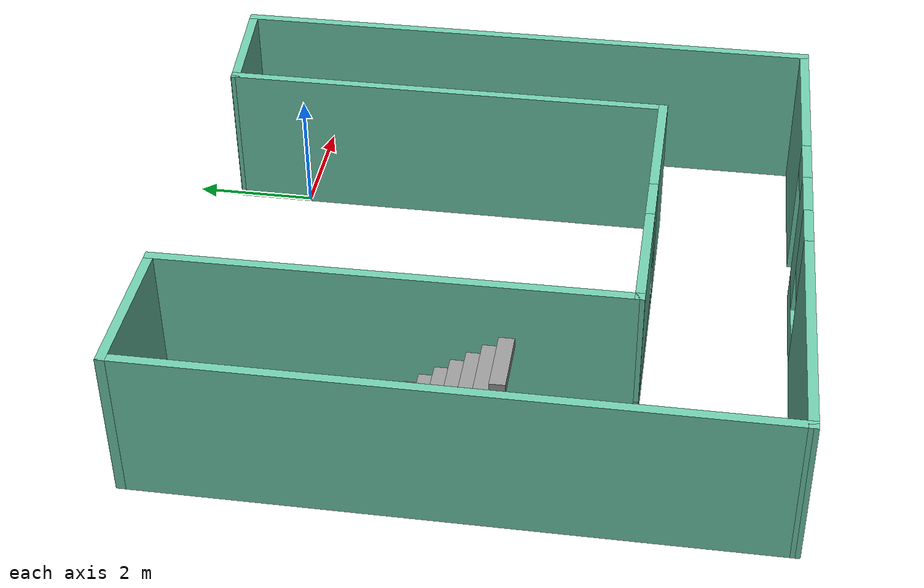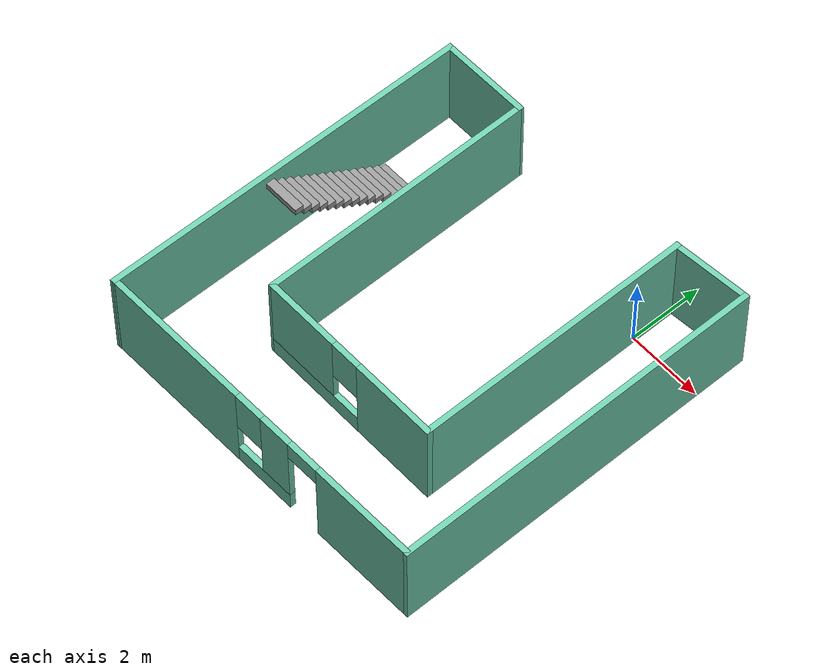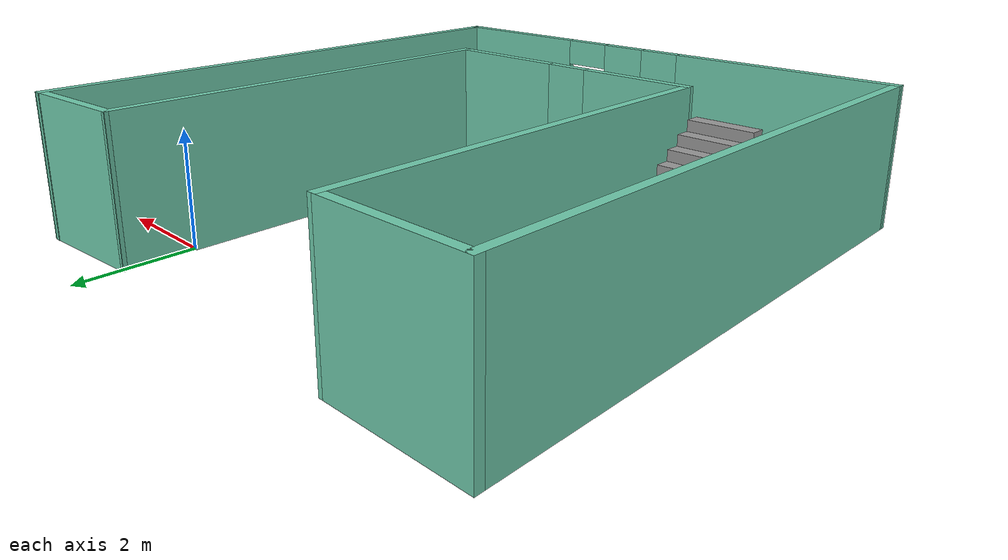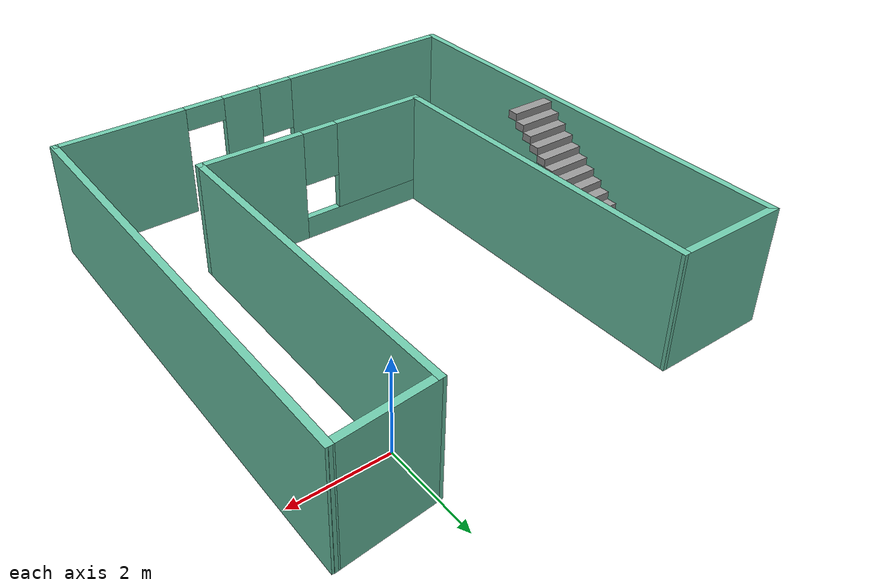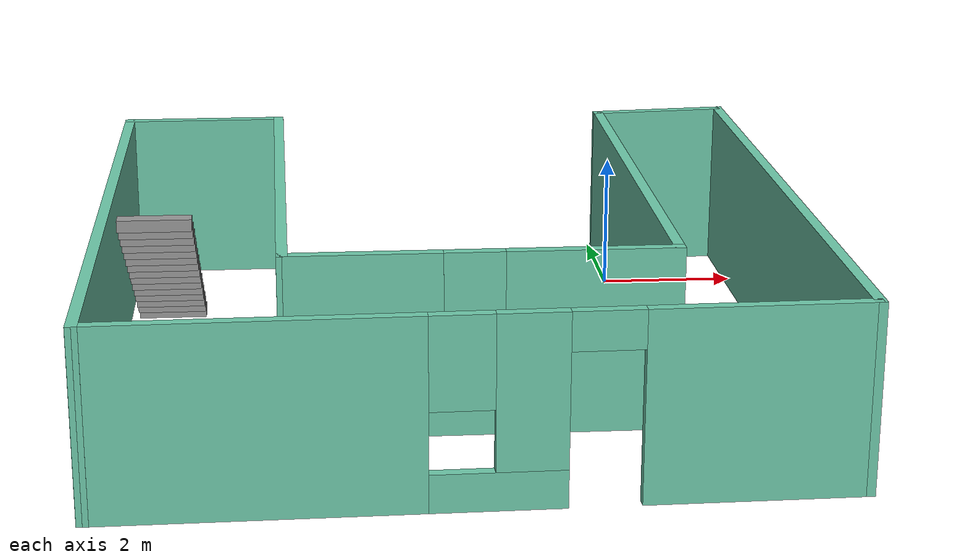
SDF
<?xml version='1.0'?>
<sdf version='1.6'>
  <model name='building'>
    <pose frame=''>-2.75398 -3.67501 0 0 -0 0</pose>
    <link name='Stairs_1'>
      <visual name='Stairs_1_Visual_0'>
        <pose frame=''>-4.04114 2.5527 0.083333 0 -0 0</pose>
        <geometry>
          <box>
            <size>1 0.233333 0.166667</size>
          </box>
        </geometry>
        <material>
          <script>
            <uri>file://media/materials/scripts/gazebo.material</uri>
            <name>Gazebo/Grey</name>
          </script>
          <ambient>1 1 1 1</ambient>
        </material>
        <meta>
          <layer>0</layer>
        </meta>
      </visual>
      <collision name='Stairs_1_Collision_0'>
        <geometry>
          <box>
            <size>1 0.233333 0.166667</size>
          </box>
        </geometry>
        <pose frame=''>-4.04114 2.5527 0.083333 0 -0 0</pose>
      </collision>
      <visual name='Stairs_1_Visual_1'>
        <pose frame=''>-4.04114 2.31936 0.25 0 -0 0</pose>
        <geometry>
          <box>
            <size>1 0.233333 0.166667</size>
          </box>
        </geometry>
        <material>
          <script>
            <uri>file://media/materials/scripts/gazebo.material</uri>
            <name>Gazebo/Grey</name>
          </script>
          <ambient>1 1 1 1</ambient>
        </material>
        <meta>
          <layer>0</layer>
        </meta>
      </visual>
      <collision name='Stairs_1_Collision_1'>
        <geometry>
          <box>
            <size>1 0.233333 0.166667</size>
          </box>
        </geometry>
        <pose frame=''>-4.04114 2.31936 0.25 0 -0 0</pose>
      </collision>
      <visual name='Stairs_1_Visual_2'>
        <pose frame=''>-4.04114 2.08603 0.416667 0 -0 0</pose>
        <geometry>
          <box>
            <size>1 0.233333 0.166667</size>
          </box>
        </geometry>
        <material>
          <script>
            <uri>file://media/materials/scripts/gazebo.material</uri>
            <name>Gazebo/Grey</name>
          </script>
          <ambient>1 1 1 1</ambient>
        </material>
        <meta>
          <layer>0</layer>
        </meta>
      </visual>
      <collision name='Stairs_1_Collision_2'>
        <geometry>
          <box>
            <size>1 0.233333 0.166667</size>
          </box>
        </geometry>
        <pose frame=''>-4.04114 2.08603 0.416667 0 -0 0</pose>
      </collision>
      <visual name='Stairs_1_Visual_3'>
        <pose frame=''>-4.04114 1.8527 0.583333 0 -0 0</pose>
        <geometry>
          <box>
            <size>1 0.233333 0.166667</size>
          </box>
        </geometry>
        <material>
          <script>
            <uri>file://media/materials/scripts/gazebo.material</uri>
            <name>Gazebo/Grey</name>
          </script>
          <ambient>1 1 1 1</ambient>
        </material>
        <meta>
          <layer>0</layer>
        </meta>
      </visual>
      <collision name='Stairs_1_Collision_3'>
        <geometry>
          <box>
            <size>1 0.233333 0.166667</size>
          </box>
        </geometry>
        <pose frame=''>-4.04114 1.8527 0.583333 0 -0 0</pose>
      </collision>
      <visual name='Stairs_1_Visual_4'>
        <pose frame=''>-4.04114 1.61936 0.75 0 -0 0</pose>
        <geometry>
          <box>
            <size>1 0.233333 0.166667</size>
          </box>
        </geometry>
        <material>
          <script>
            <uri>file://media/materials/scripts/gazebo.material</uri>
            <name>Gazebo/Grey</name>
          </script>
          <ambient>1 1 1 1</ambient>
        </material>
        <meta>
          <layer>0</layer>
        </meta>
      </visual>
      <collision name='Stairs_1_Collision_4'>
        <geometry>
          <box>
            <size>1 0.233333 0.166667</size>
          </box>
        </geometry>
        <pose frame=''>-4.04114 1.61936 0.75 0 -0 0</pose>
      </collision>
      <visual name='Stairs_1_Visual_5'>
        <pose frame=''>-4.04114 1.38603 0.916667 0 -0 0</pose>
        <geometry>
          <box>
            <size>1 0.233333 0.166667</size>
          </box>
        </geometry>
        <material>
          <script>
            <uri>file://media/materials/scripts/gazebo.material</uri>
            <name>Gazebo/Grey</name>
          </script>
          <ambient>1 1 1 1</ambient>
        </material>
        <meta>
          <layer>0</layer>
        </meta>
      </visual>
      <collision name='Stairs_1_Collision_5'>
        <geometry>
          <box>
            <size>1 0.233333 0.166667</size>
          </box>
        </geometry>
        <pose frame=''>-4.04114 1.38603 0.916667 0 -0 0</pose>
      </collision>
      <visual name='Stairs_1_Visual_6'>
        <pose frame=''>-4.04114 1.1527 1.08333 0 -0 0</pose>
        <geometry>
          <box>
            <size>1 0.233333 0.166667</size>
          </box>
        </geometry>
        <material>
          <script>
            <uri>file://media/materials/scripts/gazebo.material</uri>
            <name>Gazebo/Grey</name>
          </script>
          <ambient>1 1 1 1</ambient>
        </material>
        <meta>
          <layer>0</layer>
        </meta>
      </visual>
      <collision name='Stairs_1_Collision_6'>
        <geometry>
          <box>
            <size>1 0.233333 0.166667</size>
          </box>
        </geometry>
        <pose frame=''>-4.04114 1.1527 1.08333 0 -0 0</pose>
      </collision>
      <visual name='Stairs_1_Visual_7'>
        <pose frame=''>-4.04114 0.919364 1.25 0 -0 0</pose>
        <geometry>
          <box>
            <size>1 0.233333 0.166667</size>
          </box>
        </geometry>
        <material>
          <script>
            <uri>file://media/materials/scripts/gazebo.material</uri>
            <name>Gazebo/Grey</name>
          </script>
          <ambient>1 1 1 1</ambient>
        </material>
        <meta>
          <layer>0</layer>
        </meta>
      </visual>
      <collision name='Stairs_1_Collision_7'>
        <geometry>
          <box>
            <size>1 0.233333 0.166667</size>
          </box>
        </geometry>
        <pose frame=''>-4.04114 0.919364 1.25 0 -0 0</pose>
      </collision>
      <visual name='Stairs_1_Visual_8'>
        <pose frame=''>-4.04114 0.686031 1.41667 0 -0 0</pose>
        <geometry>
          <box>
            <size>1 0.233333 0.166667</size>
          </box>
        </geometry>
        <material>
          <script>
            <uri>file://media/materials/scripts/gazebo.material</uri>
            <name>Gazebo/Grey</name>
          </script>
          <ambient>1 1 1 1</ambient>
        </material>
        <meta>
          <layer>0</layer>
        </meta>
      </visual>
      <collision name='Stairs_1_Collision_8'>
        <geometry>
          <box>
            <size>1 0.233333 0.166667</size>
          </box>
        </geometry>
        <pose frame=''>-4.04114 0.686031 1.41667 0 -0 0</pose>
      </collision>
      <visual name='Stairs_1_Visual_9'>
        <pose frame=''>-4.04114 0.452697 1.58333 0 -0 0</pose>
        <geometry>
          <box>
            <size>1 0.233333 0.166667</size>
          </box>
        </geometry>
        <material>
          <script>
            <uri>file://media/materials/scripts/gazebo.material</uri>
            <name>Gazebo/Grey</name>
          </script>
          <ambient>1 1 1 1</ambient>
        </material>
        <meta>
          <layer>0</layer>
        </meta>
      </visual>
      <collision name='Stairs_1_Collision_9'>
        <geometry>
          <box>
            <size>1 0.233333 0.166667</size>
          </box>
        </geometry>
        <pose frame=''>-4.04114 0.452697 1.58333 0 -0 0</pose>
      </collision>
      <visual name='Stairs_1_Visual_10'>
        <pose frame=''>-4.04114 0.219364 1.75 0 -0 0</pose>
        <geometry>
          <box>
            <size>1 0.233333 0.166667</size>
          </box>
        </geometry>
        <material>
          <script>
            <uri>file://media/materials/scripts/gazebo.material</uri>
            <name>Gazebo/Grey</name>
          </script>
          <ambient>1 1 1 1</ambient>
        </material>
        <meta>
          <layer>0</layer>
        </meta>
      </visual>
      <collision name='Stairs_1_Collision_10'>
        <geometry>
          <box>
            <size>1 0.233333 0.166667</size>
          </box>
        </geometry>
        <pose frame=''>-4.04114 0.219364 1.75 0 -0 0</pose>
      </collision>
      <visual name='Stairs_1_Visual_11'>
        <pose frame=''>-4.04114 -0.01397 1.91667 0 -0 0</pose>
        <geometry>
          <box>
            <size>1 0.233333 0.166667</size>
          </box>
        </geometry>
        <material>
          <script>
            <uri>file://media/materials/scripts/gazebo.material</uri>
            <name>Gazebo/Grey</name>
          </script>
          <ambient>1 1 1 1</ambient>
        </material>
        <meta>
          <layer>0</layer>
        </meta>
      </visual>
      <collision name='Stairs_1_Collision_11'>
        <geometry>
          <box>
            <size>1 0.233333 0.166667</size>
          </box>
        </geometry>
        <pose frame=''>-4.04114 -0.01397 1.91667 0 -0 0</pose>
      </collision>
      <visual name='Stairs_1_Visual_12'>
        <pose frame=''>-4.04114 -0.247303 2.08333 0 -0 0</pose>
        <geometry>
          <box>
            <size>1 0.233333 0.166667</size>
          </box>
        </geometry>
        <material>
          <script>
            <uri>file://media/materials/scripts/gazebo.material</uri>
            <name>Gazebo/Grey</name>
          </script>
          <ambient>1 1 1 1</ambient>
        </material>
        <meta>
          <layer>0</layer>
        </meta>
      </visual>
      <collision name='Stairs_1_Collision_12'>
        <geometry>
          <box>
            <size>1 0.233333 0.166667</size>
          </box>
        </geometry>
        <pose frame=''>-4.04114 -0.247303 2.08333 0 -0 0</pose>
      </collision>
      <visual name='Stairs_1_Visual_13'>
        <pose frame=''>-4.04114 -0.480636 2.25 0 -0 0</pose>
        <geometry>
          <box>
            <size>1 0.233333 0.166667</size>
          </box>
        </geometry>
        <material>
          <script>
            <uri>file://media/materials/scripts/gazebo.material</uri>
            <name>Gazebo/Grey</name>
          </script>
          <ambient>1 1 1 1</ambient>
        </material>
        <meta>
          <layer>0</layer>
        </meta>
      </visual>
      <collision name='Stairs_1_Collision_13'>
        <geometry>
          <box>
            <size>1 0.233333 0.166667</size>
          </box>
        </geometry>
        <pose frame=''>-4.04114 -0.480636 2.25 0 -0 0</pose>
      </collision>
      <visual name='Stairs_1_Visual_14'>
        <pose frame=''>-4.04114 -0.713969 2.41667 0 -0 0</pose>
        <geometry>
          <box>
            <size>1 0.233333 0.166667</size>
          </box>
        </geometry>
        <material>
          <script>
            <uri>file://media/materials/scripts/gazebo.material</uri>
            <name>Gazebo/Grey</name>
          </script>
          <ambient>1 1 1 1</ambient>
        </material>
        <meta>
          <layer>0</layer>
        </meta>
      </visual>
      <collision name='Stairs_1_Collision_14'>
        <geometry>
          <box>
            <size>1 0.233333 0.166667</size>
          </box>
        </geometry>
        <pose frame=''>-4.04114 -0.713969 2.41667 0 -0 0</pose>
      </collision>
    </link>
    <link name='Wall_10'>
      <collision name='Wall_10_Collision'>
        <geometry>
          <box>
            <size>7.50017 0.15 2.5</size>
          </box>
        </geometry>
        <pose frame=''>0 0 1.25 0 -0 0</pose>
      </collision>
      <visual name='Wall_10_Visual'>
        <pose frame=''>0 0 1.25 0 -0 0</pose>
        <geometry>
          <box>
            <size>7.50017 0.15 2.5</size>
          </box>
        </geometry>
        <material>
          <script>
            <uri>file://media/materials/scripts/gazebo.material</uri>
            <name>Gazebo/Grey</name>
          </script>
          <ambient>0.435294 0.796078 0.67451 1</ambient>
        </material>
        <meta>
          <layer>0</layer>
        </meta>
      </visual>
      <pose frame=''>-2.3641 1.16528 0 0 -0 1.5776</pose>
    </link>
    <link name='Wall_11'>
      <collision name='Wall_11_Collision'>
        <geometry>
          <box>
            <size>2.5 0.15 2.5</size>
          </box>
        </geometry>
        <pose frame=''>0 0 1.25 0 -0 0</pose>
      </collision>
      <visual name='Wall_11_Visual'>
        <pose frame=''>0 0 1.25 0 -0 0</pose>
        <geometry>
          <box>
            <size>2.5 0.15 2.5</size>
          </box>
        </geometry>
        <material>
          <script>
            <uri>file://media/materials/scripts/gazebo.material</uri>
            <name>Gazebo/Grey</name>
          </script>
          <ambient>0.435294 0.796078 0.67451 1</ambient>
        </material>
        <meta>
          <layer>0</layer>
        </meta>
      </visual>
      <pose frame=''>-3.5641 4.84028 0 0 -0 3.14159</pose>
    </link>
    <link name='Wall_4'>
      <collision name='Wall_4_Collision'>
        <geometry>
          <box>
            <size>10 0.15 2.5</size>
          </box>
        </geometry>
        <pose frame=''>0 0 1.25 0 -0 0</pose>
      </collision>
      <visual name='Wall_4_Visual'>
        <pose frame=''>0 0 1.25 0 -0 0</pose>
        <geometry>
          <box>
            <size>10 0.15 2.5</size>
          </box>
        </geometry>
        <material>
          <script>
            <uri>file://media/materials/scripts/gazebo.material</uri>
            <name>Gazebo/Grey</name>
          </script>
          <ambient>0.435294 0.796078 0.67451 1</ambient>
        </material>
        <meta>
          <layer>0</layer>
        </meta>
      </visual>
      <pose frame=''>-4.7391 -0.084724 0 0 0 -1.5708</pose>
    </link>
    <link name='Wall_5'>
      <pose frame=''>-0.019935 -4.92739 0 0 -0 0.017445</pose>
      <visual name='Wall_5_Visual_0'>
        <pose frame=''>-2.70953 0 1.25 0 -0 0</pose>
        <geometry>
          <box>
            <size>4.17071 0.15 2.5</size>
          </box>
        </geometry>
        <material>
          <script>
            <uri>file://media/materials/scripts/gazebo.material</uri>
            <name>Gazebo/Grey</name>
          </script>
          <ambient>0.435294 0.796078 0.67451 1</ambient>
        </material>
        <meta>
          <layer>0</layer>
        </meta>
      </visual>
      <collision name='Wall_5_Collision_0'>
        <geometry>
          <box>
            <size>4.17071 0.15 2.5</size>
          </box>
        </geometry>
        <pose frame=''>-2.70953 0 1.25 0 -0 0</pose>
      </collision>
      <visual name='Wall_5_Visual_1'>
        <pose frame=''>3.3783 0 1.25 0 -0 0</pose>
        <geometry>
          <box>
            <size>2.83318 0.15 2.5</size>
          </box>
        </geometry>
        <material>
          <script>
            <uri>file://media/materials/scripts/gazebo.material</uri>
            <name>Gazebo/Grey</name>
          </script>
          <ambient>0.435294 0.796078 0.67451 1</ambient>
        </material>
        <meta>
          <layer>0</layer>
        </meta>
      </visual>
      <collision name='Wall_5_Collision_1'>
        <geometry>
          <box>
            <size>2.83318 0.15 2.5</size>
          </box>
        </geometry>
        <pose frame=''>3.3783 0 1.25 0 -0 0</pose>
      </collision>
      <visual name='Wall_5_Visual_2'>
        <pose frame=''>0.218766 0 0.25 0 -0 0</pose>
        <geometry>
          <box>
            <size>1.68588 0.15 0.5</size>
          </box>
        </geometry>
        <material>
          <script>
            <uri>file://media/materials/scripts/gazebo.material</uri>
            <name>Gazebo/Grey</name>
          </script>
          <ambient>0.435294 0.796078 0.67451 1</ambient>
        </material>
        <meta>
          <layer>0</layer>
        </meta>
      </visual>
      <collision name='Wall_5_Collision_2'>
        <geometry>
          <box>
            <size>1.68588 0.15 0.5</size>
          </box>
        </geometry>
        <pose frame=''>0.218766 0 0.25 0 -0 0</pose>
      </collision>
      <visual name='Wall_5_Visual_3'>
        <pose frame=''>0.618766 0 1.5 0 -0 0</pose>
        <geometry>
          <box>
            <size>0.885878 0.15 2</size>
          </box>
        </geometry>
        <material>
          <script>
            <uri>file://media/materials/scripts/gazebo.material</uri>
            <name>Gazebo/Grey</name>
          </script>
          <ambient>0.435294 0.796078 0.67451 1</ambient>
        </material>
        <meta>
          <layer>0</layer>
        </meta>
      </visual>
      <collision name='Wall_5_Collision_3'>
        <geometry>
          <box>
            <size>0.885878 0.15 2</size>
          </box>
        </geometry>
        <pose frame=''>0.618766 0 1.5 0 -0 0</pose>
      </collision>
      <visual name='Wall_5_Visual_4'>
        <pose frame=''>-0.224173 0 1.9 0 -0 0</pose>
        <geometry>
          <box>
            <size>0.8 0.15 1.2</size>
          </box>
        </geometry>
        <material>
          <script>
            <uri>file://media/materials/scripts/gazebo.material</uri>
            <name>Gazebo/Grey</name>
          </script>
          <ambient>0.435294 0.796078 0.67451 1</ambient>
        </material>
        <meta>
          <layer>0</layer>
        </meta>
      </visual>
      <collision name='Wall_5_Collision_4'>
        <geometry>
          <box>
            <size>0.8 0.15 1.2</size>
          </box>
        </geometry>
        <pose frame=''>-0.224173 0 1.9 0 -0 0</pose>
      </collision>
      <visual name='Wall_5_Visual_5'>
        <pose frame=''>1.51171 0 2.25 0 -0 0</pose>
        <geometry>
          <box>
            <size>0.9 0.15 0.5</size>
          </box>
        </geometry>
        <material>
          <script>
            <uri>file://media/materials/scripts/gazebo.material</uri>
            <name>Gazebo/Grey</name>
          </script>
          <ambient>0.435294 0.796078 0.67451 1</ambient>
        </material>
        <meta>
          <layer>0</layer>
        </meta>
      </visual>
      <collision name='Wall_5_Collision_5'>
        <geometry>
          <box>
            <size>0.9 0.15 0.5</size>
          </box>
        </geometry>
        <pose frame=''>1.51171 0 2.25 0 -0 0</pose>
      </collision>
    </link>
    <link name='Wall_6'>
      <collision name='Wall_6_Collision'>
        <geometry>
          <box>
            <size>10 0.15 2.5</size>
          </box>
        </geometry>
        <pose frame=''>0 0 1.25 0 -0 0</pose>
      </collision>
      <visual name='Wall_6_Visual'>
        <pose frame=''>0 0 1.25 0 -0 0</pose>
        <geometry>
          <box>
            <size>10 0.15 2.5</size>
          </box>
        </geometry>
        <material>
          <script>
            <uri>file://media/materials/scripts/gazebo.material</uri>
            <name>Gazebo/Grey</name>
          </script>
          <ambient>0.435294 0.796078 0.67451 1</ambient>
        </material>
        <meta>
          <layer>0</layer>
        </meta>
      </visual>
      <pose frame=''>4.7404 0.079941 0 0 -0 1.5708</pose>
    </link>
    <link name='Wall_7'>
      <collision name='Wall_7_Collision'>
        <geometry>
          <box>
            <size>2.09532 0.15 2.5</size>
          </box>
        </geometry>
        <pose frame=''>0 0 1.25 0 -0 0</pose>
      </collision>
      <visual name='Wall_7_Visual'>
        <pose frame=''>0 0 1.25 0 -0 0</pose>
        <geometry>
          <box>
            <size>2.09532 0.15 2.5</size>
          </box>
        </geometry>
        <material>
          <script>
            <uri>file://media/materials/scripts/gazebo.material</uri>
            <name>Gazebo/Grey</name>
          </script>
          <ambient>0.435294 0.796078 0.67451 1</ambient>
        </material>
        <meta>
          <layer>0</layer>
        </meta>
      </visual>
      <pose frame=''>3.73007 4.92261 0 0 0 -3.05685</pose>
    </link>
    <link name='Wall_8'>
      <collision name='Wall_8_Collision'>
        <geometry>
          <box>
            <size>7.5 0.15 2.5</size>
          </box>
        </geometry>
        <pose frame=''>0 0 1.25 0 -0 0</pose>
      </collision>
      <visual name='Wall_8_Visual'>
        <pose frame=''>0 0 1.25 0 -0 0</pose>
        <geometry>
          <box>
            <size>7.5 0.15 2.5</size>
          </box>
        </geometry>
        <material>
          <script>
            <uri>file://media/materials/scripts/gazebo.material</uri>
            <name>Gazebo/Grey</name>
          </script>
          <ambient>0.435294 0.796078 0.67451 1</ambient>
        </material>
        <meta>
          <layer>0</layer>
        </meta>
      </visual>
      <pose frame=''>2.7609 1.16528 0 0 0 -1.5708</pose>
    </link>
    <link name='Wall_9'>
      <pose frame=''>0.210896 -2.50972 0 0 -0 3.14159</pose>
      <visual name='Wall_9_Visual_0'>
        <pose frame=''>-1.46538 0 1.25 0 -0 0</pose>
        <geometry>
          <box>
            <size>2.31925 0.15 2.5</size>
          </box>
        </geometry>
        <material>
          <script>
            <uri>file://media/materials/scripts/gazebo.material</uri>
            <name>Gazebo/Grey</name>
          </script>
          <ambient>0.435294 0.796078 0.67451 1</ambient>
        </material>
        <meta>
          <layer>0</layer>
        </meta>
      </visual>
      <collision name='Wall_9_Collision_0'>
        <geometry>
          <box>
            <size>2.31925 0.15 2.5</size>
          </box>
        </geometry>
        <pose frame=''>-1.46538 0 1.25 0 -0 0</pose>
      </collision>
      <visual name='Wall_9_Visual_1'>
        <pose frame=''>1.15962 0 0.25 0 -0 0</pose>
        <geometry>
          <box>
            <size>2.93075 0.15 0.5</size>
          </box>
        </geometry>
        <material>
          <script>
            <uri>file://media/materials/scripts/gazebo.material</uri>
            <name>Gazebo/Grey</name>
          </script>
          <ambient>0.435294 0.796078 0.67451 1</ambient>
        </material>
        <meta>
          <layer>0</layer>
        </meta>
      </visual>
      <collision name='Wall_9_Collision_1'>
        <geometry>
          <box>
            <size>2.93075 0.15 0.5</size>
          </box>
        </geometry>
        <pose frame=''>1.15962 0 0.25 0 -0 0</pose>
      </collision>
      <visual name='Wall_9_Visual_2'>
        <pose frame=''>1.55963 0 1.5 0 -0 0</pose>
        <geometry>
          <box>
            <size>2.13075 0.15 2</size>
          </box>
        </geometry>
        <material>
          <script>
            <uri>file://media/materials/scripts/gazebo.material</uri>
            <name>Gazebo/Grey</name>
          </script>
          <ambient>0.435294 0.796078 0.67451 1</ambient>
        </material>
        <meta>
          <layer>0</layer>
        </meta>
      </visual>
      <collision name='Wall_9_Collision_2'>
        <geometry>
          <box>
            <size>2.13075 0.15 2</size>
          </box>
        </geometry>
        <pose frame=''>1.55963 0 1.5 0 -0 0</pose>
      </collision>
      <visual name='Wall_9_Visual_3'>
        <pose frame=''>0.09425 0 1.9 0 -0 0</pose>
        <geometry>
          <box>
            <size>0.8 0.15 1.2</size>
          </box>
        </geometry>
        <material>
          <script>
            <uri>file://media/materials/scripts/gazebo.material</uri>
            <name>Gazebo/Grey</name>
          </script>
          <ambient>0.435294 0.796078 0.67451 1</ambient>
        </material>
        <meta>
          <layer>0</layer>
        </meta>
      </visual>
      <collision name='Wall_9_Collision_3'>
        <geometry>
          <box>
            <size>0.8 0.15 1.2</size>
          </box>
        </geometry>
        <pose frame=''>0.09425 0 1.9 0 -0 0</pose>
      </collision>
    </link>
    <static>1</static>
  </model>
</sdf>
